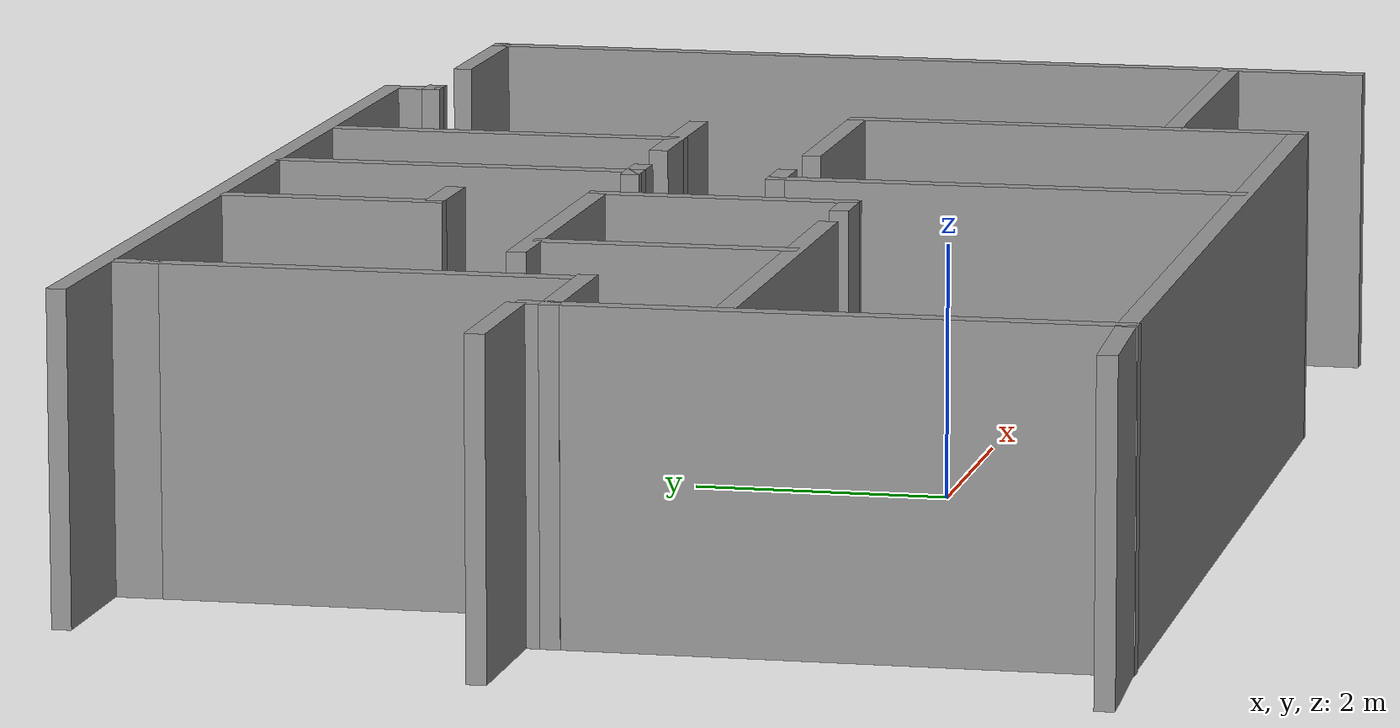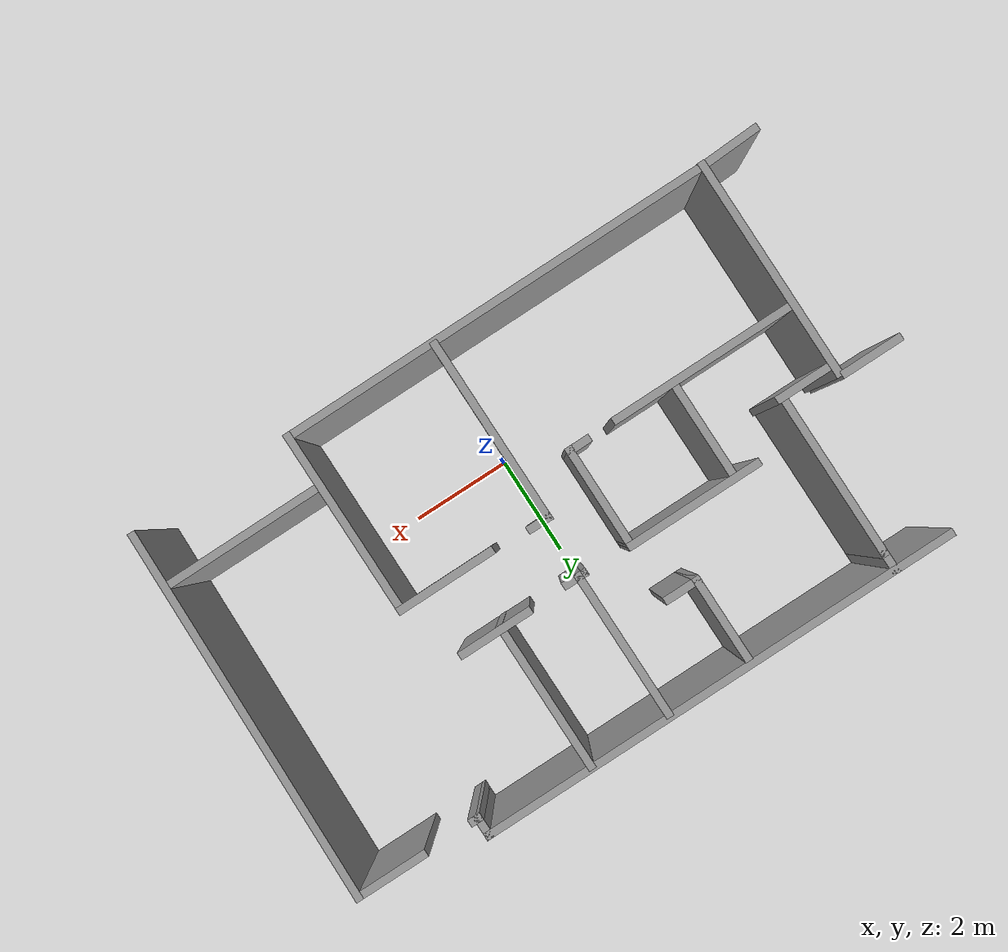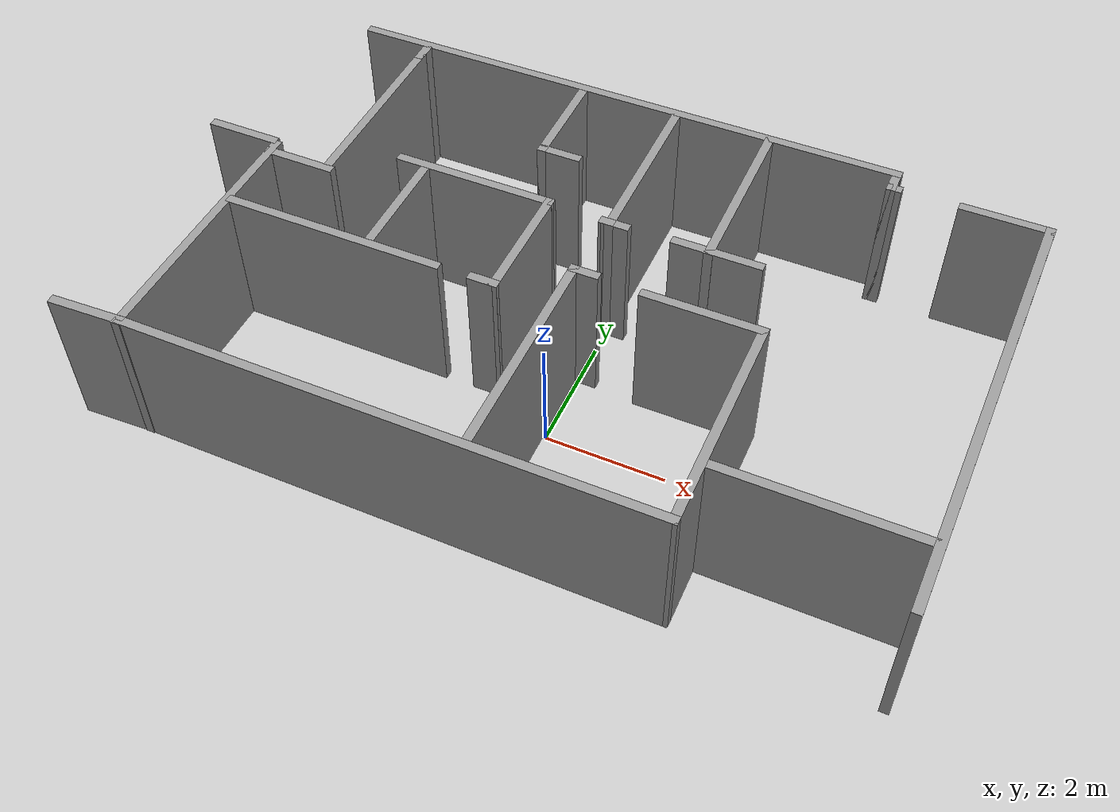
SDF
<?xml version='1.0'?>
<sdf version='1.6'>
  <model name='whiz_ex'>
    <pose frame=''>-0.335653 1.51481 0 0 -0 0</pose>
    <link name='Wall_10'>
      <collision name='Wall_10_Collision'>
        <geometry>
          <box>
            <size>1.25 0.15 2.5</size>
          </box>
        </geometry>
        <pose frame=''>0 0 1.25 0 -0 0</pose>
      </collision>
      <visual name='Wall_10_Visual'>
        <pose frame=''>0 0 1.25 0 -0 0</pose>
        <geometry>
          <box>
            <size>1.25 0.15 2.5</size>
          </box>
        </geometry>
        <material>
          <script>
            <uri>file://media/materials/scripts/gazebo.material</uri>
            <name>Gazebo/Grey</name>
          </script>
          <ambient>1 1 1 1</ambient>
        </material>
      </visual>
      <pose frame=''>-6.05295 0.541414 0 0 -0 3.14159</pose>
    </link>
    <link name='Wall_12'>
      <collision name='Wall_12_Collision'>
        <geometry>
          <box>
            <size>4.4737 0.15 2.5</size>
          </box>
        </geometry>
        <pose frame=''>0 0 1.25 0 -0 0</pose>
      </collision>
      <visual name='Wall_12_Visual'>
        <pose frame=''>0 0 1.25 0 -0 0</pose>
        <geometry>
          <box>
            <size>4.4737 0.15 2.5</size>
          </box>
        </geometry>
        <material>
          <script>
            <uri>file://media/materials/scripts/gazebo.material</uri>
            <name>Gazebo/Grey</name>
          </script>
          <ambient>1 1 1 1</ambient>
        </material>
      </visual>
      <pose frame=''>-5.40643 -1.68841 0 0 -0 1.5708</pose>
    </link>
    <link name='Wall_15'>
      <collision name='Wall_15_Collision'>
        <geometry>
          <box>
            <size>1.25111 0.15 2.5</size>
          </box>
        </geometry>
        <pose frame=''>0 0 1.25 0 -0 0</pose>
      </collision>
      <visual name='Wall_15_Visual'>
        <pose frame=''>0 0 1.25 0 -0 0</pose>
        <geometry>
          <box>
            <size>1.25111 0.15 2.5</size>
          </box>
        </geometry>
        <material>
          <script>
            <uri>file://media/materials/scripts/gazebo.material</uri>
            <name>Gazebo/Grey</name>
          </script>
          <ambient>1 1 1 1</ambient>
        </material>
      </visual>
      <pose frame=''>-5.95643 -3.86341 0 0 0 -3.09668</pose>
    </link>
    <link name='Wall_18'>
      <collision name='Wall_18_Collision'>
        <geometry>
          <box>
            <size>0.5 0.15 2.5</size>
          </box>
        </geometry>
        <pose frame=''>0 0 1.25 0 -0 0</pose>
      </collision>
      <visual name='Wall_18_Visual'>
        <pose frame=''>0 0 1.25 0 -0 0</pose>
        <geometry>
          <box>
            <size>0.5 0.15 2.5</size>
          </box>
        </geometry>
        <material>
          <script>
            <uri>file://media/materials/scripts/gazebo.material</uri>
            <name>Gazebo/Grey</name>
          </script>
          <ambient>1 1 1 1</ambient>
        </material>
      </visual>
      <pose frame=''>0.389091 -0.180158 0 0 -0 0</pose>
    </link>
    <link name='Wall_2'>
      <collision name='Wall_2_Collision'>
        <geometry>
          <box>
            <size>7.5674 0.15 2.5</size>
          </box>
        </geometry>
        <pose frame=''>0 0 1.25 0 -0 0</pose>
      </collision>
      <visual name='Wall_2_Visual'>
        <pose frame=''>0 0 1.25 0 -0 0</pose>
        <geometry>
          <box>
            <size>7.5674 0.15 2.5</size>
          </box>
        </geometry>
        <material>
          <script>
            <uri>file://media/materials/scripts/gazebo.material</uri>
            <name>Gazebo/Grey</name>
          </script>
          <ambient>1 1 1 1</ambient>
        </material>
      </visual>
      <pose frame=''>6.52247 -0.153961 0 0 0 -1.59207</pose>
    </link>
    <link name='Wall_20'>
      <collision name='Wall_20_Collision'>
        <geometry>
          <box>
            <size>3.75 0.15 2.5</size>
          </box>
        </geometry>
        <pose frame=''>0 0 1.25 0 -0 0</pose>
      </collision>
      <visual name='Wall_20_Visual'>
        <pose frame=''>0 0 1.25 0 -0 0</pose>
        <geometry>
          <box>
            <size>3.75 0.15 2.5</size>
          </box>
        </geometry>
        <material>
          <script>
            <uri>file://media/materials/scripts/gazebo.material</uri>
            <name>Gazebo/Grey</name>
          </script>
          <ambient>1 1 1 1</ambient>
        </material>
      </visual>
      <pose frame=''>0.214091 -1.98016 0 0 0 -1.5708</pose>
    </link>
    <link name='Wall_22'>
      <collision name='Wall_22_Collision'>
        <geometry>
          <box>
            <size>2 0.15 2.5</size>
          </box>
        </geometry>
        <pose frame=''>0 0 1.25 0 -0 0</pose>
      </collision>
      <visual name='Wall_22_Visual'>
        <pose frame=''>0 0 1.25 0 -0 0</pose>
        <geometry>
          <box>
            <size>2 0.15 2.5</size>
          </box>
        </geometry>
        <material>
          <script>
            <uri>file://media/materials/scripts/gazebo.material</uri>
            <name>Gazebo/Grey</name>
          </script>
          <ambient>1 1 1 1</ambient>
        </material>
      </visual>
      <pose frame=''>2.30947 -0.232759 0 0 -0 0</pose>
    </link>
    <link name='Wall_23'>
      <collision name='Wall_23_Collision'>
        <geometry>
          <box>
            <size>3.75 0.15 2.5</size>
          </box>
        </geometry>
        <pose frame=''>0 0 1.25 0 -0 0</pose>
      </collision>
      <visual name='Wall_23_Visual'>
        <pose frame=''>0 0 1.25 0 -0 0</pose>
        <geometry>
          <box>
            <size>3.75 0.15 2.5</size>
          </box>
        </geometry>
        <material>
          <script>
            <uri>file://media/materials/scripts/gazebo.material</uri>
            <name>Gazebo/Grey</name>
          </script>
          <ambient>1 1 1 1</ambient>
        </material>
      </visual>
      <pose frame=''>3.23447 -2.03276 0 0 0 -1.5708</pose>
    </link>
    <link name='Wall_25'>
      <collision name='Wall_25_Collision'>
        <geometry>
          <box>
            <size>3.25 0.15 2.5</size>
          </box>
        </geometry>
        <pose frame=''>0 0 1.25 0 -0 0</pose>
      </collision>
      <visual name='Wall_25_Visual'>
        <pose frame=''>0 0 1.25 0 -0 0</pose>
        <geometry>
          <box>
            <size>3.25 0.15 2.5</size>
          </box>
        </geometry>
        <material>
          <script>
            <uri>file://media/materials/scripts/gazebo.material</uri>
            <name>Gazebo/Grey</name>
          </script>
          <ambient>1 1 1 1</ambient>
        </material>
      </visual>
      <pose frame=''>4.85442 -2.81022 0 0 -0 0</pose>
    </link>
    <link name='Wall_27'>
      <collision name='Wall_27_Collision'>
        <geometry>
          <box>
            <size>8.79095 0.15 2.5</size>
          </box>
        </geometry>
        <pose frame=''>0 0 1.25 0 -0 0</pose>
      </collision>
      <visual name='Wall_27_Visual'>
        <pose frame=''>0 0 1.25 0 -0 0</pose>
        <geometry>
          <box>
            <size>8.79095 0.15 2.5</size>
          </box>
        </geometry>
        <material>
          <script>
            <uri>file://media/materials/scripts/gazebo.material</uri>
            <name>Gazebo/Grey</name>
          </script>
          <ambient>1 1 1 1</ambient>
        </material>
      </visual>
      <pose frame=''>-1.08598 -3.83573 0 0 -0 0.000687</pose>
    </link>
    <link name='Wall_31'>
      <collision name='Wall_31_Collision'>
        <geometry>
          <box>
            <size>2.76315 0.15 2.5</size>
          </box>
        </geometry>
        <pose frame=''>0 0 1.25 0 -0 0</pose>
      </collision>
      <visual name='Wall_31_Visual'>
        <pose frame=''>0 0 1.25 0 -0 0</pose>
        <geometry>
          <box>
            <size>2.76315 0.15 2.5</size>
          </box>
        </geometry>
        <material>
          <script>
            <uri>file://media/materials/scripts/gazebo.material</uri>
            <name>Gazebo/Grey</name>
          </script>
          <ambient>1 1 1 1</ambient>
        </material>
      </visual>
      <pose frame=''>-2.04362 1.02243 0 0 -0 0</pose>
    </link>
    <link name='Wall_33'>
      <collision name='Wall_33_Collision'>
        <geometry>
          <box>
            <size>0.5 0.15 2.5</size>
          </box>
        </geometry>
        <pose frame=''>0 0 1.25 0 -0 0</pose>
      </collision>
      <visual name='Wall_33_Visual'>
        <pose frame=''>0 0 1.25 0 -0 0</pose>
        <geometry>
          <box>
            <size>0.5 0.15 2.5</size>
          </box>
        </geometry>
        <material>
          <script>
            <uri>file://media/materials/scripts/gazebo.material</uri>
            <name>Gazebo/Grey</name>
          </script>
          <ambient>1 1 1 1</ambient>
        </material>
      </visual>
      <pose frame=''>-0.920191 -0.947573 0 0 -0 3.14159</pose>
    </link>
    <link name='Wall_38'>
      <collision name='Wall_38_Collision'>
        <geometry>
          <box>
            <size>3.75 0.15 2.5</size>
          </box>
        </geometry>
        <pose frame=''>0 0 1.25 0 -0 0</pose>
      </collision>
      <visual name='Wall_38_Visual'>
        <pose frame=''>0 0 1.25 0 -0 0</pose>
        <geometry>
          <box>
            <size>3.75 0.15 2.5</size>
          </box>
        </geometry>
        <material>
          <script>
            <uri>file://media/materials/scripts/gazebo.material</uri>
            <name>Gazebo/Grey</name>
          </script>
          <ambient>1 1 1 1</ambient>
        </material>
      </visual>
      <pose frame=''>-3.52433 -0.96048 0 0 -0 3.14159</pose>
    </link>
    <link name='Wall_4'>
      <collision name='Wall_4_Collision'>
        <geometry>
          <box>
            <size>1.5 0.15 2.5</size>
          </box>
        </geometry>
        <pose frame=''>0 0 1.25 0 -0 0</pose>
      </collision>
      <visual name='Wall_4_Visual'>
        <pose frame=''>0 0 1.25 0 -0 0</pose>
        <geometry>
          <box>
            <size>1.5 0.15 2.5</size>
          </box>
        </geometry>
        <material>
          <script>
            <uri>file://media/materials/scripts/gazebo.material</uri>
            <name>Gazebo/Grey</name>
          </script>
          <ambient>1 1 1 1</ambient>
        </material>
      </visual>
      <pose frame=''>5.92637 3.5539 0 0 -0 3.14159</pose>
    </link>
    <link name='Wall_40'>
      <collision name='Wall_40_Collision'>
        <geometry>
          <box>
            <size>2 0.15 2.5</size>
          </box>
        </geometry>
        <pose frame=''>0 0 1.25 0 -0 0</pose>
      </collision>
      <visual name='Wall_40_Visual'>
        <pose frame=''>0 0 1.25 0 -0 0</pose>
        <geometry>
          <box>
            <size>2 0.15 2.5</size>
          </box>
        </geometry>
        <material>
          <script>
            <uri>file://media/materials/scripts/gazebo.material</uri>
            <name>Gazebo/Grey</name>
          </script>
          <ambient>1 1 1 1</ambient>
        </material>
      </visual>
      <pose frame=''>-2.90026 0.016761 0 0 0 -1.5708</pose>
    </link>
    <link name='Wall_44'>
      <collision name='Wall_44_Collision'>
        <geometry>
          <box>
            <size>1.25 0.15 2.5</size>
          </box>
        </geometry>
        <pose frame=''>0 0 1.25 0 -0 0</pose>
      </collision>
      <visual name='Wall_44_Visual'>
        <pose frame=''>0 0 1.25 0 -0 0</pose>
        <geometry>
          <box>
            <size>1.25 0.15 2.5</size>
          </box>
        </geometry>
        <material>
          <script>
            <uri>file://media/materials/scripts/gazebo.material</uri>
            <name>Gazebo/Grey</name>
          </script>
          <ambient>1 1 1 1</ambient>
        </material>
      </visual>
      <pose frame=''>-4.85954 0.293641 0 0 -0 3.14159</pose>
    </link>
    <link name='Wall_47'>
      <collision name='Wall_47_Collision'>
        <geometry>
          <box>
            <size>2.12002 0.15 2.5</size>
          </box>
        </geometry>
        <pose frame=''>0 0 1.25 0 -0 0</pose>
      </collision>
      <visual name='Wall_47_Visual'>
        <pose frame=''>0 0 1.25 0 -0 0</pose>
        <geometry>
          <box>
            <size>2.12002 0.15 2.5</size>
          </box>
        </geometry>
        <material>
          <script>
            <uri>file://media/materials/scripts/gazebo.material</uri>
            <name>Gazebo/Grey</name>
          </script>
          <ambient>1 1 1 1</ambient>
        </material>
      </visual>
      <pose frame=''>-0.741115 0.037427 0 0 -0 1.56666</pose>
    </link>
    <link name='Wall_49'>
      <collision name='Wall_49_Collision'>
        <geometry>
          <box>
            <size>1.75 0.15 2.5</size>
          </box>
        </geometry>
        <pose frame=''>0 0 1.25 0 -0 0</pose>
      </collision>
      <visual name='Wall_49_Visual'>
        <pose frame=''>0 0 1.25 0 -0 0</pose>
        <geometry>
          <box>
            <size>1.75 0.15 2.5</size>
          </box>
        </geometry>
        <material>
          <script>
            <uri>file://media/materials/scripts/gazebo.material</uri>
            <name>Gazebo/Grey</name>
          </script>
          <ambient>1 1 1 1</ambient>
        </material>
      </visual>
      <pose frame=''>-1.36298 2.95769 0 0 0 -1.5708</pose>
    </link>
    <link name='Wall_50'>
      <collision name='Wall_50_Collision'>
        <geometry>
          <box>
            <size>0.75 0.15 2.5</size>
          </box>
        </geometry>
        <pose frame=''>0 0 1.25 0 -0 0</pose>
      </collision>
      <visual name='Wall_50_Visual'>
        <pose frame=''>0 0 1.25 0 -0 0</pose>
        <geometry>
          <box>
            <size>0.75 0.15 2.5</size>
          </box>
        </geometry>
        <material>
          <script>
            <uri>file://media/materials/scripts/gazebo.material</uri>
            <name>Gazebo/Grey</name>
          </script>
          <ambient>1 1 1 1</ambient>
        </material>
      </visual>
      <pose frame=''>-1.06298 2.15769 0 0 -0 0</pose>
    </link>
    <link name='Wall_52'>
      <collision name='Wall_52_Collision'>
        <geometry>
          <box>
            <size>3 0.15 2.5</size>
          </box>
        </geometry>
        <pose frame=''>0 0 1.25 0 -0 0</pose>
      </collision>
      <visual name='Wall_52_Visual'>
        <pose frame=''>0 0 1.25 0 -0 0</pose>
        <geometry>
          <box>
            <size>3 0.15 2.5</size>
          </box>
        </geometry>
        <material>
          <script>
            <uri>file://media/materials/scripts/gazebo.material</uri>
            <name>Gazebo/Grey</name>
          </script>
          <ambient>1 1 1 1</ambient>
        </material>
      </visual>
      <pose frame=''>0.325194 2.40113 0 0 0 -1.5708</pose>
    </link>
    <link name='Wall_53'>
      <collision name='Wall_53_Collision'>
        <geometry>
          <box>
            <size>0.25 0.15 2.5</size>
          </box>
        </geometry>
        <pose frame=''>0 0 1.25 0 -0 0</pose>
      </collision>
      <visual name='Wall_53_Visual'>
        <pose frame=''>0 0 1.25 0 -0 0</pose>
        <geometry>
          <box>
            <size>0.25 0.15 2.5</size>
          </box>
        </geometry>
        <material>
          <script>
            <uri>file://media/materials/scripts/gazebo.material</uri>
            <name>Gazebo/Grey</name>
          </script>
          <ambient>1 1 1 1</ambient>
        </material>
      </visual>
      <pose frame=''>0.275194 0.976133 0 0 -0 3.14159</pose>
    </link>
    <link name='Wall_54'>
      <collision name='Wall_54_Collision'>
        <geometry>
          <box>
            <size>0.5 0.15 2.5</size>
          </box>
        </geometry>
        <pose frame=''>0 0 1.25 0 -0 0</pose>
      </collision>
      <visual name='Wall_54_Visual'>
        <pose frame=''>0 0 1.25 0 -0 0</pose>
        <geometry>
          <box>
            <size>0.5 0.15 2.5</size>
          </box>
        </geometry>
        <material>
          <script>
            <uri>file://media/materials/scripts/gazebo.material</uri>
            <name>Gazebo/Grey</name>
          </script>
          <ambient>1 1 1 1</ambient>
        </material>
      </visual>
      <pose frame=''>0.400194 0.976133 0 0 -0 0</pose>
    </link>
    <link name='Wall_56'>
      <collision name='Wall_56_Collision'>
        <geometry>
          <box>
            <size>1.5 0.15 2.5</size>
          </box>
        </geometry>
        <pose frame=''>0 0 1.25 0 -0 0</pose>
      </collision>
      <visual name='Wall_56_Visual'>
        <pose frame=''>0 0 1.25 0 -0 0</pose>
        <geometry>
          <box>
            <size>1.5 0.15 2.5</size>
          </box>
        </geometry>
        <material>
          <script>
            <uri>file://media/materials/scripts/gazebo.material</uri>
            <name>Gazebo/Grey</name>
          </script>
          <ambient>1 1 1 1</ambient>
        </material>
      </visual>
      <pose frame=''>2.08001 1.00491 0 0 -0 0</pose>
    </link>
    <link name='Wall_58'>
      <collision name='Wall_58_Collision'>
        <geometry>
          <box>
            <size>3 0.15 2.5</size>
          </box>
        </geometry>
        <pose frame=''>0 0 1.25 0 -0 0</pose>
      </collision>
      <visual name='Wall_58_Visual'>
        <pose frame=''>0 0 1.25 0 -0 0</pose>
        <geometry>
          <box>
            <size>3 0.15 2.5</size>
          </box>
        </geometry>
        <material>
          <script>
            <uri>file://media/materials/scripts/gazebo.material</uri>
            <name>Gazebo/Grey</name>
          </script>
          <ambient>1 1 1 1</ambient>
        </material>
      </visual>
      <pose frame=''>1.95253 2.42395 0 0 0 -1.5708</pose>
    </link>
    <link name='Wall_6'>
      <collision name='Wall_6_Collision'>
        <geometry>
          <box>
            <size>0.25 0.15 2.5</size>
          </box>
        </geometry>
        <pose frame=''>0 0 1.25 0 -0 0</pose>
      </collision>
      <visual name='Wall_6_Visual'>
        <pose frame=''>0 0 1.25 0 -0 0</pose>
        <geometry>
          <box>
            <size>0.25 0.15 2.5</size>
          </box>
        </geometry>
        <material>
          <script>
            <uri>file://media/materials/scripts/gazebo.material</uri>
            <name>Gazebo/Grey</name>
          </script>
          <ambient>1 1 1 1</ambient>
        </material>
      </visual>
      <pose frame=''>4.14705 3.54141 0 0 -0 3.14159</pose>
    </link>
    <link name='Wall_60'>
      <collision name='Wall_60_Collision'>
        <geometry>
          <box>
            <size>0.5 0.15 2.5</size>
          </box>
        </geometry>
        <pose frame=''>0 0 1.25 0 -0 0</pose>
      </collision>
      <visual name='Wall_60_Visual'>
        <pose frame=''>0 0 1.25 0 -0 0</pose>
        <geometry>
          <box>
            <size>0.5 0.15 2.5</size>
          </box>
        </geometry>
        <material>
          <script>
            <uri>file://media/materials/scripts/gazebo.material</uri>
            <name>Gazebo/Grey</name>
          </script>
          <ambient>1 1 1 1</ambient>
        </material>
      </visual>
      <pose frame=''>-4.35804 3.71031 0 0 0 -1.5708</pose>
    </link>
    <link name='Wall_64'>
      <collision name='Wall_64_Collision'>
        <geometry>
          <box>
            <size>3.25 0.15 2.5</size>
          </box>
        </geometry>
        <pose frame=''>0 0 1.25 0 -0 0</pose>
      </collision>
      <visual name='Wall_64_Visual'>
        <pose frame=''>0 0 1.25 0 -0 0</pose>
        <geometry>
          <box>
            <size>3.25 0.15 2.5</size>
          </box>
        </geometry>
        <material>
          <script>
            <uri>file://media/materials/scripts/gazebo.material</uri>
            <name>Gazebo/Grey</name>
          </script>
          <ambient>1 1 1 1</ambient>
        </material>
      </visual>
      <pose frame=''>-4.35804 1.98531 0 0 0 -1.5708</pose>
    </link>
    <link name='Wall_7'>
      <collision name='Wall_7_Collision'>
        <geometry>
          <box>
            <size>0.5 0.15 2.5</size>
          </box>
        </geometry>
        <pose frame=''>0 0 1.25 0 -0 0</pose>
      </collision>
      <visual name='Wall_7_Visual'>
        <pose frame=''>0 0 1.25 0 -0 0</pose>
        <geometry>
          <box>
            <size>0.5 0.15 2.5</size>
          </box>
        </geometry>
        <material>
          <script>
            <uri>file://media/materials/scripts/gazebo.material</uri>
            <name>Gazebo/Grey</name>
          </script>
          <ambient>1 1 1 1</ambient>
        </material>
      </visual>
      <pose frame=''>4.09705 3.71641 0 0 -0 1.5708</pose>
    </link>
    <link name='Wall_8'>
      <collision name='Wall_8_Collision'>
        <geometry>
          <box>
            <size>9.75 0.15 2.5</size>
          </box>
        </geometry>
        <pose frame=''>0 0 1.25 0 -0 0</pose>
      </collision>
      <visual name='Wall_8_Visual'>
        <pose frame=''>0 0 1.25 0 -0 0</pose>
        <geometry>
          <box>
            <size>9.75 0.15 2.5</size>
          </box>
        </geometry>
        <material>
          <script>
            <uri>file://media/materials/scripts/gazebo.material</uri>
            <name>Gazebo/Grey</name>
          </script>
          <ambient>1 1 1 1</ambient>
        </material>
      </visual>
      <pose frame=''>-0.702951 3.89141 0 0 -0 3.14159</pose>
    </link>
    <static>1</static>
  </model>
</sdf>
